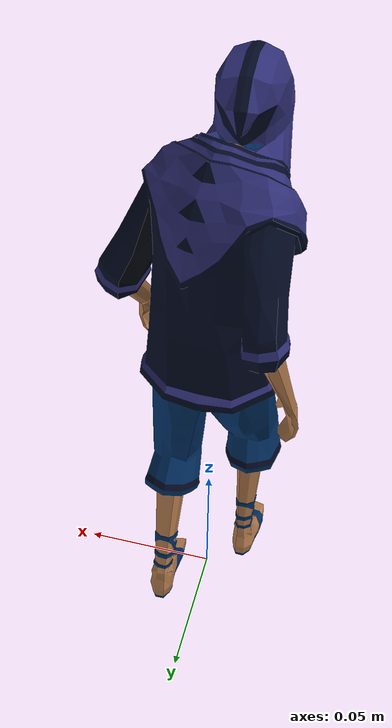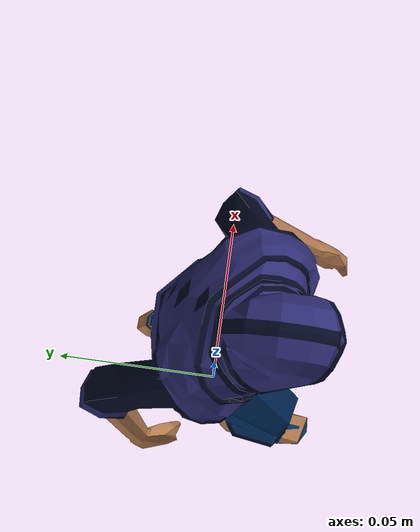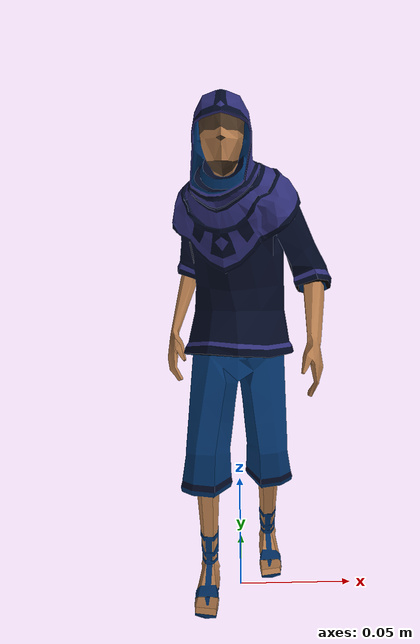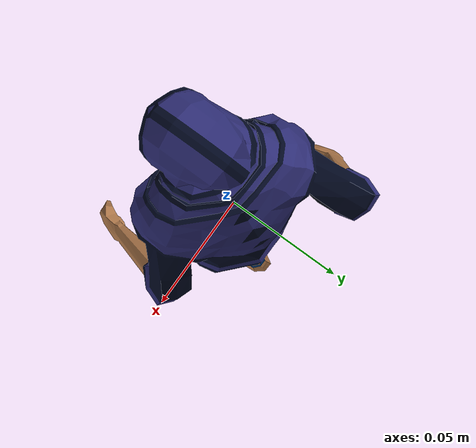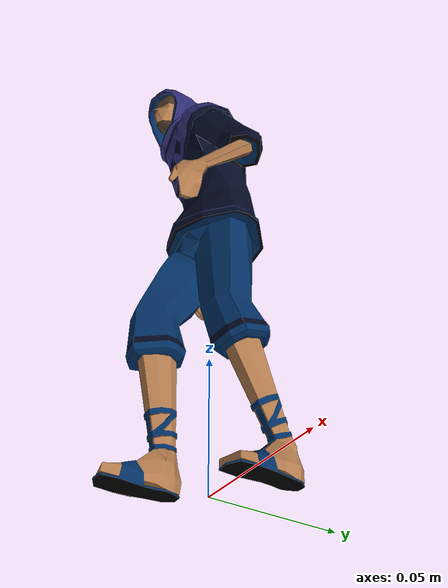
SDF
<?xml version="1.0" ?>
<sdf version="1.5">
    <model name='pedestrian'>
      <static>1</static>
      <link name='link'>
        <collision name='collision'>
          <geometry>
            <mesh>
              <uri>model://pedestrian/meshes/pedestrian2.dae</uri>
              <scale>0.09 0.09 0.09</scale>
            </mesh>
          </geometry>
          <max_contacts>10</max_contacts>
          <surface>
            <contact>
              <ode/>
            </contact>
            <bounce/>
            <friction>
              <ode/>
            </friction>
          </surface>
        </collision>
        <visual name='visual'>
          <cast_shadows>0</cast_shadows>
          <geometry>
            <mesh>
              <uri>model://pedestrian/meshes/pedestrian2.dae</uri>
              <scale>0.09 0.09 0.09</scale>
            </mesh>
          </geometry>
        </visual>
        <self_collide>0</self_collide>
        <kinematic>0</kinematic>
        <gravity>1</gravity>
      </link>
      <pose>0 0 0 0 -0 0</pose>
    </model>
</sdf>
